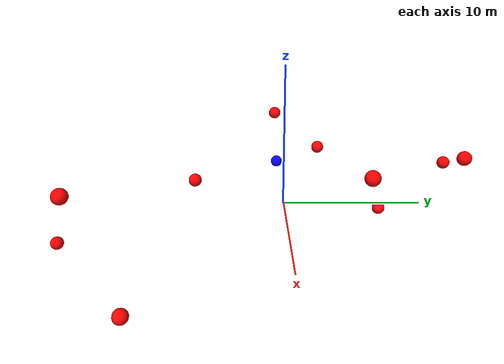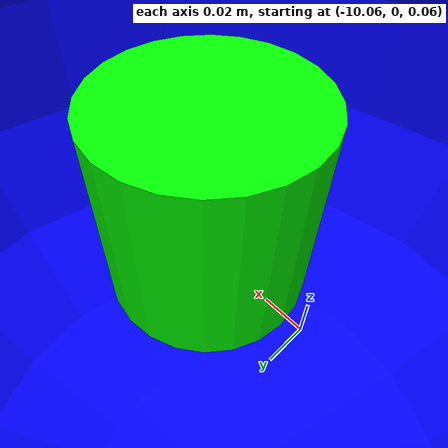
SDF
<?xml version="1.0" ?>
<sdf version="1.8">
    <world name="3d_world">
        <physics name="1ms" type="ode">
            <max_step_size>0.001</max_step_size>
            <real_time_factor>1.0</real_time_factor>
            <real_time_update_rate>1000.0</real_time_update_rate>
        </physics>
        <gravity>0 0 0</gravity>

        <plugin
            filename="gz-sim-physics-system"
            name="gz::sim::v8::systems::Physics">
        </plugin>
        <plugin
            filename="libignition-gazebo-user-commands-system.so"
            name="ignition::gazebo::systems::UserCommands">
        </plugin>
        <plugin
            filename="gz-sim-scene-broadcaster-system"
            name="gz::sim::systems::SceneBroadcaster">
        </plugin>
        <plugin
            filename="gz-sim-sensors-system"
            name="gz::sim::systems::Sensors">
            <render_engine>ogre2</render_engine>
        </plugin>

        <light type="directional" name="sun">
            <cast_shadows>true</cast_shadows>
            <pose>0 0 10 0 0 0</pose>
            <diffuse>0.8 0.8 0.8 1</diffuse>
            <specular>0.2 0.2 0.2 1</specular>
            <attenuation>
                <range>1000</range>
                <constant>0.9</constant>
                <linear>0.01</linear>
                <quadratic>0.001</quadratic>
            </attenuation>
            <direction>-0.5 0.1 -0.9</direction>
        </light>

        <!-- AGENTE -->
        <model name='agente' canonical_link='chassis'>
            <pose relative_to='world'>-10.0 0 0.0 0 0 0</pose>
            <link name='chassis'>
                <pose relative_to='__model__'>0.0 0 0.0 0 0 0</pose>
                <inertial>
                    <mass>1.14395</mass>
                    <inertia>
                        <ixx>0.095329</ixx>
                        <ixy>0</ixy>
                        <ixz>0</ixz>
                        <iyy>0.381317</iyy>
                        <iyz>0</iyz>
                        <izz>0.476646</izz>
                    </inertia>
                </inertial>
                <visual name='visual'>
                    <geometry>
                        <sphere>
                            <radius>0.5</radius>
                        </sphere>
                    </geometry>
                    <material>
                        <ambient>0.0 0.0 1.0 1</ambient>
                        <diffuse>0.0 0.0 1.0 1</diffuse>
                        <specular>0.0 0.0 1.0 1</specular>
                    </material>
                </visual>
                <collision name='collision'>
                    <geometry>
                        <sphere>
                            <radius>0.5</radius>
                        </sphere>
                    </geometry>
                </collision>
                <enable_gravity>false</enable_gravity>
            </link>

            <link name='lidar_link'>
                <pose relative_to='chassis'>0.0 0 0.1 0 0 0</pose>
                <inertial>
                    <mass>0.1</mass>
                    <inertia>
                        <ixx>0.000166667</ixx>
                        <iyy>0.000166667</iyy>
                        <izz>0.000166667</izz>
                    </inertia>
                </inertial>
                <collision name='collision'>
                    <geometry>
                        <cylinder>
                            <radius>0.05</radius>
                            <length>0.1</length>
                        </cylinder>
                    </geometry>
                </collision>
                <visual name='visual'>
                    <geometry>
                        <cylinder>
                            <radius>0.05</radius>
                            <length>0.1</length>
                        </cylinder>
                    </geometry>
                    <material>
                        <ambient>0.0 1.0 0.0 1</ambient>
                        <diffuse>0.0 1.0 0.0 1</diffuse>
                        <specular>0.0 1.0 0.0 1</specular>
                    </material>
                </visual>
                <sensor name="lidar" type="gpu_lidar">
                    <topic>scan</topic>
                    <update_rate>10</update_rate>
                    <lidar>
                        <scan>
                            <horizontal>
                                <samples>5000</samples>
                                <resolution>1</resolution>
                                <min_angle>-3.14159</min_angle>
                                <max_angle>3.14159</max_angle>
                            </horizontal>
                        </scan>
                        <range>
                            <min>0.1</min>
                            <max>10.0</max>
                            <resolution>0.01</resolution>
                        </range>
                    </lidar>
                    <visualize>true</visualize>
                    <always_on>true</always_on>
                    <update_rate>10</update_rate>
                    <pose_frame>lidar</pose_frame>
                </sensor>
                <enable_gravity>false</enable_gravity>
            </link>

            <joint name="lidar_joint" type="fixed">
                <parent>chassis</parent>
                <child>lidar_link</child>
            </joint>

            <plugin
                filename="ignition-gazebo-joint-state-publisher-system"
                name="ignition::gazebo::systems::JointStatePublisher">
            </plugin>
            <plugin
                filename="ignition-gazebo-odometry-publisher-system"
                name="ignition::gazebo::systems::OdometryPublisher">
                <dimensions>3</dimensions>
            </plugin>
            <plugin
                filename="ignition-gazebo-velocity-control-system"
                name="ignition::gazebo::systems::VelocityControl">
                <initial_linear>0.0 0 0</initial_linear>
                <initial_angular>0 0 0.0</initial_angular>
            </plugin>
            <plugin
                filename="libignition-gazebo-pose-publisher-system.so"
                name="ignition::gazebo::systems::PosePublisher">
                <topic>/agente/pose</topic>
                <frame_id>agente</frame_id>
                <update_rate>30</update_rate>
            </plugin>
        </model>

        <!-- OBSTACLE 1 -->
        <model name='obstacle_1' canonical_link='obstacle'>
            <static>false</static>
            <pose relative_to='world'>-3.76 8.10 -2.06 0 0 0</pose>
            <link name='obstacle'>
                <pose relative_to='__model__'>0.0 0 0.0 0 0 0</pose>
                <visual name='visual'>
                    <geometry>
                        <sphere>
                            <radius>0.50</radius>
                        </sphere>
                    </geometry>
                    <material>
                        <ambient>1.0 0.0 0.0 1</ambient>
                        <diffuse>1.0 0.0 0.0 1</diffuse>
                        <specular>1.0 0.0 0.0 1</specular>
                    </material>
                </visual>
                <collision name='collision'>
                    <geometry>
                        <sphere>
                            <radius>0.50</radius>
                        </sphere>
                    </geometry>
                </collision>
                <enable_gravity>false</enable_gravity>
            </link>

            <plugin
                filename="ignition-gazebo-velocity-control-system"
                name="ignition::gazebo::systems::VelocityControl">
                <initial_linear>-0.24 -1.92 0.49</initial_linear>
                <initial_angular>0 0 0</initial_angular>
            </plugin>

            <plugin
                filename="ignition-gazebo-odometry-publisher-system"
                name="ignition::gazebo::systems::OdometryPublisher">
                <dimensions>3</dimensions>
            </plugin>
        </model>

        <!-- OBSTACLE 2 -->
        <model name='obstacle_2' canonical_link='obstacle'>
            <static>false</static>
            <pose relative_to='world'>-9.47 -0.24 4.68 0 0 0</pose>
            <link name='obstacle'>
                <pose relative_to='__model__'>0.0 0 0.0 0 0 0</pose>
                <visual name='visual'>
                    <geometry>
                        <sphere>
                            <radius>0.50</radius>
                        </sphere>
                    </geometry>
                    <material>
                        <ambient>1.0 0.0 0.0 1</ambient>
                        <diffuse>1.0 0.0 0.0 1</diffuse>
                        <specular>1.0 0.0 0.0 1</specular>
                    </material>
                </visual>
                <collision name='collision'>
                    <geometry>
                        <sphere>
                            <radius>0.50</radius>
                        </sphere>
                    </geometry>
                </collision>
                <enable_gravity>false</enable_gravity>
            </link>

            <plugin
                filename="ignition-gazebo-velocity-control-system"
                name="ignition::gazebo::systems::VelocityControl">
                <initial_linear>1.76 0.05 -0.94</initial_linear>
                <initial_angular>0 0 0</initial_angular>
            </plugin>

            <plugin
                filename="ignition-gazebo-odometry-publisher-system"
                name="ignition::gazebo::systems::OdometryPublisher">
                <dimensions>3</dimensions>
            </plugin>
        </model>

        <!-- OBSTACLE 3 -->
        <model name='obstacle_3' canonical_link='obstacle'>
            <static>false</static>
            <pose relative_to='world'>-7.08 3.33 2.21 0 0 0</pose>
            <link name='obstacle'>
                <pose relative_to='__model__'>0.0 0 0.0 0 0 0</pose>
                <visual name='visual'>
                    <geometry>
                        <sphere>
                            <radius>0.50</radius>
                        </sphere>
                    </geometry>
                    <material>
                        <ambient>1.0 0.0 0.0 1</ambient>
                        <diffuse>1.0 0.0 0.0 1</diffuse>
                        <specular>1.0 0.0 0.0 1</specular>
                    </material>
                </visual>
                <collision name='collision'>
                    <geometry>
                        <sphere>
                            <radius>0.50</radius>
                        </sphere>
                    </geometry>
                </collision>
                <enable_gravity>false</enable_gravity>
            </link>

            <plugin
                filename="ignition-gazebo-velocity-control-system"
                name="ignition::gazebo::systems::VelocityControl">
                <initial_linear>1.91 -0.50 -0.33</initial_linear>
                <initial_angular>0 0 0</initial_angular>
            </plugin>

            <plugin
                filename="ignition-gazebo-odometry-publisher-system"
                name="ignition::gazebo::systems::OdometryPublisher">
                <dimensions>3</dimensions>
            </plugin>
        </model>

        <!-- OBSTACLE 4 -->
        <model name='obstacle_4' canonical_link='obstacle'>
            <static>false</static>
            <pose relative_to='world'>1.29 12.33 3.80 0 0 0</pose>
            <link name='obstacle'>
                <pose relative_to='__model__'>0.0 0 0.0 0 0 0</pose>
                <visual name='visual'>
                    <geometry>
                        <sphere>
                            <radius>0.50</radius>
                        </sphere>
                    </geometry>
                    <material>
                        <ambient>1.0 0.0 0.0 1</ambient>
                        <diffuse>1.0 0.0 0.0 1</diffuse>
                        <specular>1.0 0.0 0.0 1</specular>
                    </material>
                </visual>
                <collision name='collision'>
                    <geometry>
                        <sphere>
                            <radius>0.50</radius>
                        </sphere>
                    </geometry>
                </collision>
                <enable_gravity>false</enable_gravity>
            </link>

            <plugin
                filename="ignition-gazebo-velocity-control-system"
                name="ignition::gazebo::systems::VelocityControl">
                <initial_linear>0.67 -1.80 -0.56</initial_linear>
                <initial_angular>0 0 0</initial_angular>
            </plugin>

            <plugin
                filename="ignition-gazebo-odometry-publisher-system"
                name="ignition::gazebo::systems::OdometryPublisher">
                <dimensions>3</dimensions>
            </plugin>
        </model>

        <!-- OBSTACLE 5 -->
        <model name='obstacle_5' canonical_link='obstacle'>
            <static>false</static>
            <pose relative_to='world'>5.81 4.93 4.02 0 0 0</pose>
            <link name='obstacle'>
                <pose relative_to='__model__'>0.0 0 0.0 0 0 0</pose>
                <visual name='visual'>
                    <geometry>
                        <sphere>
                            <radius>0.50</radius>
                        </sphere>
                    </geometry>
                    <material>
                        <ambient>1.0 0.0 0.0 1</ambient>
                        <diffuse>1.0 0.0 0.0 1</diffuse>
                        <specular>1.0 0.0 0.0 1</specular>
                    </material>
                </visual>
                <collision name='collision'>
                    <geometry>
                        <sphere>
                            <radius>0.50</radius>
                        </sphere>
                    </geometry>
                </collision>
                <enable_gravity>false</enable_gravity>
            </link>

            <plugin
                filename="ignition-gazebo-velocity-control-system"
                name="ignition::gazebo::systems::VelocityControl">
                <initial_linear>-0.81 -1.03 -0.84</initial_linear>
                <initial_angular>0 0 0</initial_angular>
            </plugin>

            <plugin
                filename="ignition-gazebo-odometry-publisher-system"
                name="ignition::gazebo::systems::OdometryPublisher">
                <dimensions>3</dimensions>
            </plugin>
        </model>

        <!-- OBSTACLE 6 -->
        <model name='obstacle_6' canonical_link='obstacle'>
            <static>false</static>
            <pose relative_to='world'>-2.81 -6.74 0.79 0 0 0</pose>
            <link name='obstacle'>
                <pose relative_to='__model__'>0.0 0 0.0 0 0 0</pose>
                <visual name='visual'>
                    <geometry>
                        <sphere>
                            <radius>0.50</radius>
                        </sphere>
                    </geometry>
                    <material>
                        <ambient>1.0 0.0 0.0 1</ambient>
                        <diffuse>1.0 0.0 0.0 1</diffuse>
                        <specular>1.0 0.0 0.0 1</specular>
                    </material>
                </visual>
                <collision name='collision'>
                    <geometry>
                        <sphere>
                            <radius>0.50</radius>
                        </sphere>
                    </geometry>
                </collision>
                <enable_gravity>false</enable_gravity>
            </link>

            <plugin
                filename="ignition-gazebo-velocity-control-system"
                name="ignition::gazebo::systems::VelocityControl">
                <initial_linear>0.78 1.62 -0.19</initial_linear>
                <initial_angular>0 0 0</initial_angular>
            </plugin>

            <plugin
                filename="ignition-gazebo-odometry-publisher-system"
                name="ignition::gazebo::systems::OdometryPublisher">
                <dimensions>3</dimensions>
            </plugin>
        </model>

        <!-- OBSTACLE 7 -->
        <model name='obstacle_7' canonical_link='obstacle'>
            <static>false</static>
            <pose relative_to='world'>-4.90 13.46 1.48 0 0 0</pose>
            <link name='obstacle'>
                <pose relative_to='__model__'>0.0 0 0.0 0 0 0</pose>
                <visual name='visual'>
                    <geometry>
                        <sphere>
                            <radius>0.50</radius>
                        </sphere>
                    </geometry>
                    <material>
                        <ambient>1.0 0.0 0.0 1</ambient>
                        <diffuse>1.0 0.0 0.0 1</diffuse>
                        <specular>1.0 0.0 0.0 1</specular>
                    </material>
                </visual>
                <collision name='collision'>
                    <geometry>
                        <sphere>
                            <radius>0.50</radius>
                        </sphere>
                    </geometry>
                </collision>
                <enable_gravity>false</enable_gravity>
            </link>

            <plugin
                filename="ignition-gazebo-velocity-control-system"
                name="ignition::gazebo::systems::VelocityControl">
                <initial_linear>1.33 -1.48 -0.16</initial_linear>
                <initial_angular>0 0 0</initial_angular>
            </plugin>

            <plugin
                filename="ignition-gazebo-odometry-publisher-system"
                name="ignition::gazebo::systems::OdometryPublisher">
                <dimensions>3</dimensions>
            </plugin>
        </model>

        <!-- OBSTACLE 8 -->
        <model name='obstacle_8' canonical_link='obstacle'>
            <static>false</static>
            <pose relative_to='world'>-0.77 -17.35 -3.59 0 0 0</pose>
            <link name='obstacle'>
                <pose relative_to='__model__'>0.0 0 0.0 0 0 0</pose>
                <visual name='visual'>
                    <geometry>
                        <sphere>
                            <radius>0.50</radius>
                        </sphere>
                    </geometry>
                    <material>
                        <ambient>1.0 0.0 0.0 1</ambient>
                        <diffuse>1.0 0.0 0.0 1</diffuse>
                        <specular>1.0 0.0 0.0 1</specular>
                    </material>
                </visual>
                <collision name='collision'>
                    <geometry>
                        <sphere>
                            <radius>0.50</radius>
                        </sphere>
                    </geometry>
                </collision>
                <enable_gravity>false</enable_gravity>
            </link>

            <plugin
                filename="ignition-gazebo-velocity-control-system"
                name="ignition::gazebo::systems::VelocityControl">
                <initial_linear>-0.13 1.95 0.40</initial_linear>
                <initial_angular>0 0 0</initial_angular>
            </plugin>

            <plugin
                filename="ignition-gazebo-odometry-publisher-system"
                name="ignition::gazebo::systems::OdometryPublisher">
                <dimensions>3</dimensions>
            </plugin>
        </model>

        <!-- OBSTACLE 9 -->
        <model name='obstacle_9' canonical_link='obstacle'>
            <static>false</static>
            <pose relative_to='world'>7.08 -13.38 3.46 0 0 0</pose>
            <link name='obstacle'>
                <pose relative_to='__model__'>0.0 0 0.0 0 0 0</pose>
                <visual name='visual'>
                    <geometry>
                        <sphere>
                            <radius>0.50</radius>
                        </sphere>
                    </geometry>
                    <material>
                        <ambient>1.0 0.0 0.0 1</ambient>
                        <diffuse>1.0 0.0 0.0 1</diffuse>
                        <specular>1.0 0.0 0.0 1</specular>
                    </material>
                </visual>
                <collision name='collision'>
                    <geometry>
                        <sphere>
                            <radius>0.50</radius>
                        </sphere>
                    </geometry>
                </collision>
                <enable_gravity>false</enable_gravity>
            </link>

            <plugin
                filename="ignition-gazebo-velocity-control-system"
                name="ignition::gazebo::systems::VelocityControl">
                <initial_linear>-1.06 1.64 -0.42</initial_linear>
                <initial_angular>0 0 0</initial_angular>
            </plugin>

            <plugin
                filename="ignition-gazebo-odometry-publisher-system"
                name="ignition::gazebo::systems::OdometryPublisher">
                <dimensions>3</dimensions>
            </plugin>
        </model>

        <!-- OBSTACLE 10 -->
        <model name='obstacle_10' canonical_link='obstacle'>
            <static>false</static>
            <pose relative_to='world'>9.17 -9.99 -3.21 0 0 0</pose>
            <link name='obstacle'>
                <pose relative_to='__model__'>0.0 0 0.0 0 0 0</pose>
                <visual name='visual'>
                    <geometry>
                        <sphere>
                            <radius>0.50</radius>
                        </sphere>
                    </geometry>
                    <material>
                        <ambient>1.0 0.0 0.0 1</ambient>
                        <diffuse>1.0 0.0 0.0 1</diffuse>
                        <specular>1.0 0.0 0.0 1</specular>
                    </material>
                </visual>
                <collision name='collision'>
                    <geometry>
                        <sphere>
                            <radius>0.50</radius>
                        </sphere>
                    </geometry>
                </collision>
                <enable_gravity>false</enable_gravity>
            </link>

            <plugin
                filename="ignition-gazebo-velocity-control-system"
                name="ignition::gazebo::systems::VelocityControl">
                <initial_linear>-0.40 1.51 0.49</initial_linear>
                <initial_angular>0 0 0</initial_angular>
            </plugin>

            <plugin
                filename="ignition-gazebo-odometry-publisher-system"
                name="ignition::gazebo::systems::OdometryPublisher">
                <dimensions>3</dimensions>
            </plugin>
        </model>

    </world>
</sdf>
